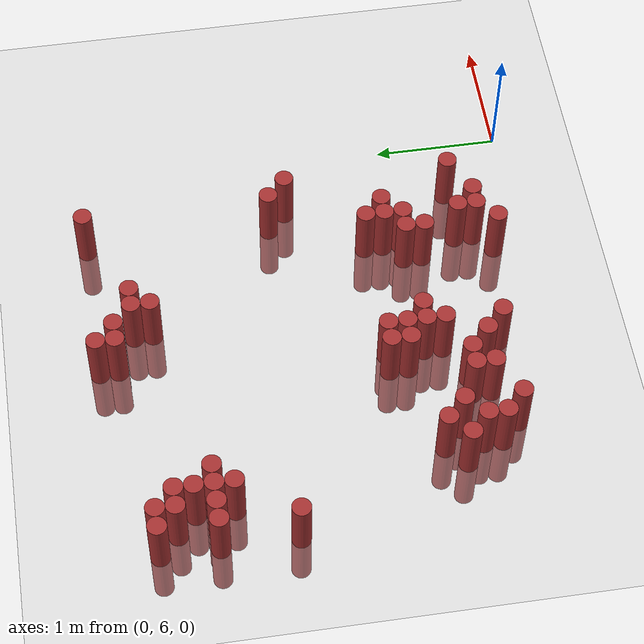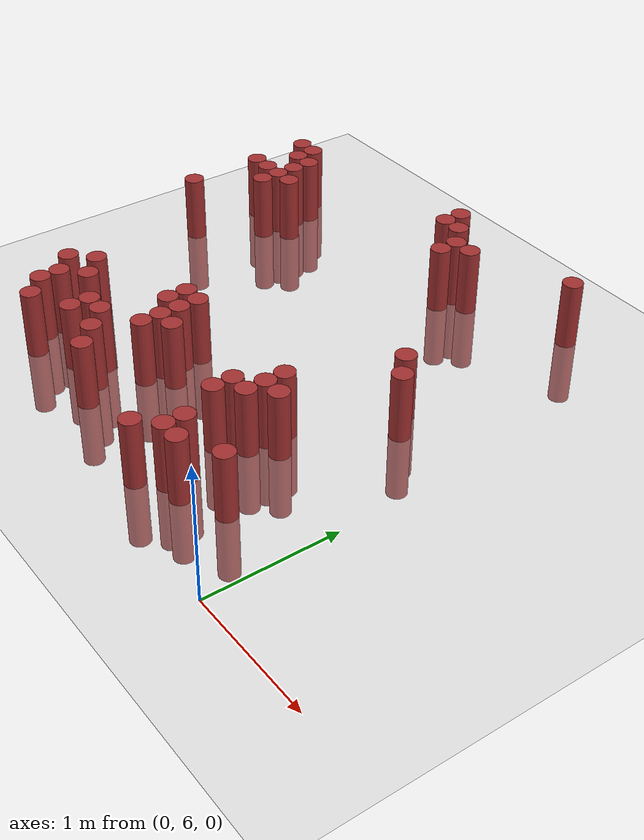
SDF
<sdf version="1.6">
 <world name="default">
  <model name="ground_plane">
   <static>1</static>
   <link name="link">
    <collision name="collision">
     <geometry><plane><normal>0 0 1</normal><size>100 100</size></plane></geometry>
     <surface><friction><ode><mu>100</mu><mu2>50</mu2></ode></friction></surface>
    </collision>
    <visual name="visual">
     <cast_shadows>0</cast_shadows>
     <geometry><plane><normal>0 0 1</normal><size>100 100</size></plane></geometry>
     <material>
      <script><uri>file://media/materials/scripts/gazebo.material</uri><name>Gazebo/Grey</name></script>
     </material>
    </visual>
   </link>
  </model>
  <model name="unit_cylinder_156">
   <static>1</static>
   <pose>-3.525000 8.175000 0.000000 0.000000 0.000000 0.000000</pose>
   <link name="link">
    <inertial>
     <mass>1</mass>
     <inertia><ixx>0.145833</ixx><ixy>0</ixy><ixz>0</ixz><iyy>0.145833</iyy><iyz>0</iyz><izz>0.125</izz></inertia>
    </inertial>
    <collision name="collision">
     <geometry><cylinder><radius>0.075000</radius><length>1</length></cylinder></geometry>
    </collision>
    <visual name="visual">
     <geometry><cylinder><radius>0.075000</radius><length>1</length></cylinder></geometry>
     <material>
      <ambient>0.648000 0.192000 0.192000 1</ambient>
      <diffuse>0.648000 0.192000 0.192000 1</diffuse>
     </material>
     <material>
      <script><name>Gazebo/Grey</name><uri>file://media/materials/scripts/gazebo.material</uri></script>
     </material>
    </visual>
   </link>
  </model>
  <model name="unit_cylinder_157">
   <static>1</static>
   <pose>-3.525000 8.775000 0.000000 0.000000 0.000000 0.000000</pose>
   <link name="link">
    <inertial>
     <mass>1</mass>
     <inertia><ixx>0.145833</ixx><ixy>0</ixy><ixz>0</ixz><iyy>0.145833</iyy><iyz>0</iyz><izz>0.125</izz></inertia>
    </inertial>
    <collision name="collision">
     <geometry><cylinder><radius>0.075000</radius><length>1</length></cylinder></geometry>
    </collision>
    <visual name="visual">
     <geometry><cylinder><radius>0.075000</radius><length>1</length></cylinder></geometry>
     <material>
      <ambient>0.648000 0.192000 0.192000 1</ambient>
      <diffuse>0.648000 0.192000 0.192000 1</diffuse>
     </material>
     <material>
      <script><name>Gazebo/Grey</name><uri>file://media/materials/scripts/gazebo.material</uri></script>
     </material>
    </visual>
   </link>
  </model>
  <model name="unit_cylinder_158">
   <static>1</static>
   <pose>-3.525000 9.225000 0.000000 0.000000 0.000000 0.000000</pose>
   <link name="link">
    <inertial>
     <mass>1</mass>
     <inertia><ixx>0.145833</ixx><ixy>0</ixy><ixz>0</ixz><iyy>0.145833</iyy><iyz>0</iyz><izz>0.125</izz></inertia>
    </inertial>
    <collision name="collision">
     <geometry><cylinder><radius>0.075000</radius><length>1</length></cylinder></geometry>
    </collision>
    <visual name="visual">
     <geometry><cylinder><radius>0.075000</radius><length>1</length></cylinder></geometry>
     <material>
      <ambient>0.648000 0.192000 0.192000 1</ambient>
      <diffuse>0.648000 0.192000 0.192000 1</diffuse>
     </material>
     <material>
      <script><name>Gazebo/Grey</name><uri>file://media/materials/scripts/gazebo.material</uri></script>
     </material>
    </visual>
   </link>
  </model>
  <model name="unit_cylinder_159">
   <static>1</static>
   <pose>-3.375000 8.775000 0.000000 0.000000 0.000000 0.000000</pose>
   <link name="link">
    <inertial>
     <mass>1</mass>
     <inertia><ixx>0.145833</ixx><ixy>0</ixy><ixz>0</ixz><iyy>0.145833</iyy><iyz>0</iyz><izz>0.125</izz></inertia>
    </inertial>
    <collision name="collision">
     <geometry><cylinder><radius>0.075000</radius><length>1</length></cylinder></geometry>
    </collision>
    <visual name="visual">
     <geometry><cylinder><radius>0.075000</radius><length>1</length></cylinder></geometry>
     <material>
      <ambient>0.648000 0.192000 0.192000 1</ambient>
      <diffuse>0.648000 0.192000 0.192000 1</diffuse>
     </material>
     <material>
      <script><name>Gazebo/Grey</name><uri>file://media/materials/scripts/gazebo.material</uri></script>
     </material>
    </visual>
   </link>
  </model>
  <model name="unit_cylinder_160">
   <static>1</static>
   <pose>-3.375000 9.075000 0.000000 0.000000 0.000000 0.000000</pose>
   <link name="link">
    <inertial>
     <mass>1</mass>
     <inertia><ixx>0.145833</ixx><ixy>0</ixy><ixz>0</ixz><iyy>0.145833</iyy><iyz>0</iyz><izz>0.125</izz></inertia>
    </inertial>
    <collision name="collision">
     <geometry><cylinder><radius>0.075000</radius><length>1</length></cylinder></geometry>
    </collision>
    <visual name="visual">
     <geometry><cylinder><radius>0.075000</radius><length>1</length></cylinder></geometry>
     <material>
      <ambient>0.648000 0.192000 0.192000 1</ambient>
      <diffuse>0.648000 0.192000 0.192000 1</diffuse>
     </material>
     <material>
      <script><name>Gazebo/Grey</name><uri>file://media/materials/scripts/gazebo.material</uri></script>
     </material>
    </visual>
   </link>
  </model>
  <model name="unit_cylinder_161">
   <static>1</static>
   <pose>-3.375000 9.225000 0.000000 0.000000 0.000000 0.000000</pose>
   <link name="link">
    <inertial>
     <mass>1</mass>
     <inertia><ixx>0.145833</ixx><ixy>0</ixy><ixz>0</ixz><iyy>0.145833</iyy><iyz>0</iyz><izz>0.125</izz></inertia>
    </inertial>
    <collision name="collision">
     <geometry><cylinder><radius>0.075000</radius><length>1</length></cylinder></geometry>
    </collision>
    <visual name="visual">
     <geometry><cylinder><radius>0.075000</radius><length>1</length></cylinder></geometry>
     <material>
      <ambient>0.648000 0.192000 0.192000 1</ambient>
      <diffuse>0.648000 0.192000 0.192000 1</diffuse>
     </material>
     <material>
      <script><name>Gazebo/Grey</name><uri>file://media/materials/scripts/gazebo.material</uri></script>
     </material>
    </visual>
   </link>
  </model>
  <model name="unit_cylinder_162">
   <static>1</static>
   <pose>-3.225000 8.625000 0.000000 0.000000 0.000000 0.000000</pose>
   <link name="link">
    <inertial>
     <mass>1</mass>
     <inertia><ixx>0.145833</ixx><ixy>0</ixy><ixz>0</ixz><iyy>0.145833</iyy><iyz>0</iyz><izz>0.125</izz></inertia>
    </inertial>
    <collision name="collision">
     <geometry><cylinder><radius>0.075000</radius><length>1</length></cylinder></geometry>
    </collision>
    <visual name="visual">
     <geometry><cylinder><radius>0.075000</radius><length>1</length></cylinder></geometry>
     <material>
      <ambient>0.648000 0.192000 0.192000 1</ambient>
      <diffuse>0.648000 0.192000 0.192000 1</diffuse>
     </material>
     <material>
      <script><name>Gazebo/Grey</name><uri>file://media/materials/scripts/gazebo.material</uri></script>
     </material>
    </visual>
   </link>
  </model>
  <model name="unit_cylinder_163">
   <static>1</static>
   <pose>-3.225000 8.775000 0.000000 0.000000 0.000000 0.000000</pose>
   <link name="link">
    <inertial>
     <mass>1</mass>
     <inertia><ixx>0.145833</ixx><ixy>0</ixy><ixz>0</ixz><iyy>0.145833</iyy><iyz>0</iyz><izz>0.125</izz></inertia>
    </inertial>
    <collision name="collision">
     <geometry><cylinder><radius>0.075000</radius><length>1</length></cylinder></geometry>
    </collision>
    <visual name="visual">
     <geometry><cylinder><radius>0.075000</radius><length>1</length></cylinder></geometry>
     <material>
      <ambient>0.648000 0.192000 0.192000 1</ambient>
      <diffuse>0.648000 0.192000 0.192000 1</diffuse>
     </material>
     <material>
      <script><name>Gazebo/Grey</name><uri>file://media/materials/scripts/gazebo.material</uri></script>
     </material>
    </visual>
   </link>
  </model>
  <model name="unit_cylinder_164">
   <static>1</static>
   <pose>-3.225000 8.925000 0.000000 0.000000 0.000000 0.000000</pose>
   <link name="link">
    <inertial>
     <mass>1</mass>
     <inertia><ixx>0.145833</ixx><ixy>0</ixy><ixz>0</ixz><iyy>0.145833</iyy><iyz>0</iyz><izz>0.125</izz></inertia>
    </inertial>
    <collision name="collision">
     <geometry><cylinder><radius>0.075000</radius><length>1</length></cylinder></geometry>
    </collision>
    <visual name="visual">
     <geometry><cylinder><radius>0.075000</radius><length>1</length></cylinder></geometry>
     <material>
      <ambient>0.648000 0.192000 0.192000 1</ambient>
      <diffuse>0.648000 0.192000 0.192000 1</diffuse>
     </material>
     <material>
      <script><name>Gazebo/Grey</name><uri>file://media/materials/scripts/gazebo.material</uri></script>
     </material>
    </visual>
   </link>
  </model>
  <model name="unit_cylinder_165">
   <static>1</static>
   <pose>-3.225000 9.075000 0.000000 0.000000 0.000000 0.000000</pose>
   <link name="link">
    <inertial>
     <mass>1</mass>
     <inertia><ixx>0.145833</ixx><ixy>0</ixy><ixz>0</ixz><iyy>0.145833</iyy><iyz>0</iyz><izz>0.125</izz></inertia>
    </inertial>
    <collision name="collision">
     <geometry><cylinder><radius>0.075000</radius><length>1</length></cylinder></geometry>
    </collision>
    <visual name="visual">
     <geometry><cylinder><radius>0.075000</radius><length>1</length></cylinder></geometry>
     <material>
      <ambient>0.648000 0.192000 0.192000 1</ambient>
      <diffuse>0.648000 0.192000 0.192000 1</diffuse>
     </material>
     <material>
      <script><name>Gazebo/Grey</name><uri>file://media/materials/scripts/gazebo.material</uri></script>
     </material>
    </visual>
   </link>
  </model>
  <model name="unit_cylinder_166">
   <static>1</static>
   <pose>-3.075000 6.825000 0.000000 0.000000 0.000000 0.000000</pose>
   <link name="link">
    <inertial>
     <mass>1</mass>
     <inertia><ixx>0.145833</ixx><ixy>0</ixy><ixz>0</ixz><iyy>0.145833</iyy><iyz>0</iyz><izz>0.125</izz></inertia>
    </inertial>
    <collision name="collision">
     <geometry><cylinder><radius>0.075000</radius><length>1</length></cylinder></geometry>
    </collision>
    <visual name="visual">
     <geometry><cylinder><radius>0.075000</radius><length>1</length></cylinder></geometry>
     <material>
      <ambient>0.648000 0.192000 0.192000 1</ambient>
      <diffuse>0.648000 0.192000 0.192000 1</diffuse>
     </material>
     <material>
      <script><name>Gazebo/Grey</name><uri>file://media/materials/scripts/gazebo.material</uri></script>
     </material>
    </visual>
   </link>
  </model>
  <model name="unit_cylinder_167">
   <static>1</static>
   <pose>-3.075000 8.775000 0.000000 0.000000 0.000000 0.000000</pose>
   <link name="link">
    <inertial>
     <mass>1</mass>
     <inertia><ixx>0.145833</ixx><ixy>0</ixy><ixz>0</ixz><iyy>0.145833</iyy><iyz>0</iyz><izz>0.125</izz></inertia>
    </inertial>
    <collision name="collision">
     <geometry><cylinder><radius>0.075000</radius><length>1</length></cylinder></geometry>
    </collision>
    <visual name="visual">
     <geometry><cylinder><radius>0.075000</radius><length>1</length></cylinder></geometry>
     <material>
      <ambient>0.648000 0.192000 0.192000 1</ambient>
      <diffuse>0.648000 0.192000 0.192000 1</diffuse>
     </material>
     <material>
      <script><name>Gazebo/Grey</name><uri>file://media/materials/scripts/gazebo.material</uri></script>
     </material>
    </visual>
   </link>
  </model>
  <model name="unit_cylinder_169">
   <static>1</static>
   <pose>-2.925000 6.525000 0.000000 0.000000 0.000000 0.000000</pose>
   <link name="link">
    <inertial>
     <mass>1</mass>
     <inertia><ixx>0.145833</ixx><ixy>0</ixy><ixz>0</ixz><iyy>0.145833</iyy><iyz>0</iyz><izz>0.125</izz></inertia>
    </inertial>
    <collision name="collision">
     <geometry><cylinder><radius>0.075000</radius><length>1</length></cylinder></geometry>
    </collision>
    <visual name="visual">
     <geometry><cylinder><radius>0.075000</radius><length>1</length></cylinder></geometry>
     <material>
      <ambient>0.648000 0.192000 0.192000 1</ambient>
      <diffuse>0.648000 0.192000 0.192000 1</diffuse>
     </material>
     <material>
      <script><name>Gazebo/Grey</name><uri>file://media/materials/scripts/gazebo.material</uri></script>
     </material>
    </visual>
   </link>
  </model>
  <model name="unit_cylinder_170">
   <static>1</static>
   <pose>-2.925000 6.675000 0.000000 0.000000 0.000000 0.000000</pose>
   <link name="link">
    <inertial>
     <mass>1</mass>
     <inertia><ixx>0.145833</ixx><ixy>0</ixy><ixz>0</ixz><iyy>0.145833</iyy><iyz>0</iyz><izz>0.125</izz></inertia>
    </inertial>
    <collision name="collision">
     <geometry><cylinder><radius>0.075000</radius><length>1</length></cylinder></geometry>
    </collision>
    <visual name="visual">
     <geometry><cylinder><radius>0.075000</radius><length>1</length></cylinder></geometry>
     <material>
      <ambient>0.648000 0.192000 0.192000 1</ambient>
      <diffuse>0.648000 0.192000 0.192000 1</diffuse>
     </material>
     <material>
      <script><name>Gazebo/Grey</name><uri>file://media/materials/scripts/gazebo.material</uri></script>
     </material>
    </visual>
   </link>
  </model>
  <model name="unit_cylinder_171">
   <static>1</static>
   <pose>-2.925000 6.975000 0.000000 0.000000 0.000000 0.000000</pose>
   <link name="link">
    <inertial>
     <mass>1</mass>
     <inertia><ixx>0.145833</ixx><ixy>0</ixy><ixz>0</ixz><iyy>0.145833</iyy><iyz>0</iyz><izz>0.125</izz></inertia>
    </inertial>
    <collision name="collision">
     <geometry><cylinder><radius>0.075000</radius><length>1</length></cylinder></geometry>
    </collision>
    <visual name="visual">
     <geometry><cylinder><radius>0.075000</radius><length>1</length></cylinder></geometry>
     <material>
      <ambient>0.648000 0.192000 0.192000 1</ambient>
      <diffuse>0.648000 0.192000 0.192000 1</diffuse>
     </material>
     <material>
      <script><name>Gazebo/Grey</name><uri>file://media/materials/scripts/gazebo.material</uri></script>
     </material>
    </visual>
   </link>
  </model>
  <model name="unit_cylinder_175">
   <static>1</static>
   <pose>-2.775000 6.375000 0.000000 0.000000 0.000000 0.000000</pose>
   <link name="link">
    <inertial>
     <mass>1</mass>
     <inertia><ixx>0.145833</ixx><ixy>0</ixy><ixz>0</ixz><iyy>0.145833</iyy><iyz>0</iyz><izz>0.125</izz></inertia>
    </inertial>
    <collision name="collision">
     <geometry><cylinder><radius>0.075000</radius><length>1</length></cylinder></geometry>
    </collision>
    <visual name="visual">
     <geometry><cylinder><radius>0.075000</radius><length>1</length></cylinder></geometry>
     <material>
      <ambient>0.648000 0.192000 0.192000 1</ambient>
      <diffuse>0.648000 0.192000 0.192000 1</diffuse>
     </material>
     <material>
      <script><name>Gazebo/Grey</name><uri>file://media/materials/scripts/gazebo.material</uri></script>
     </material>
    </visual>
   </link>
  </model>
  <model name="unit_cylinder_176">
   <static>1</static>
   <pose>-2.775000 6.825000 0.000000 0.000000 0.000000 0.000000</pose>
   <link name="link">
    <inertial>
     <mass>1</mass>
     <inertia><ixx>0.145833</ixx><ixy>0</ixy><ixz>0</ixz><iyy>0.145833</iyy><iyz>0</iyz><izz>0.125</izz></inertia>
    </inertial>
    <collision name="collision">
     <geometry><cylinder><radius>0.075000</radius><length>1</length></cylinder></geometry>
    </collision>
    <visual name="visual">
     <geometry><cylinder><radius>0.075000</radius><length>1</length></cylinder></geometry>
     <material>
      <ambient>0.648000 0.192000 0.192000 1</ambient>
      <diffuse>0.648000 0.192000 0.192000 1</diffuse>
     </material>
     <material>
      <script><name>Gazebo/Grey</name><uri>file://media/materials/scripts/gazebo.material</uri></script>
     </material>
    </visual>
   </link>
  </model>
  <model name="unit_cylinder_179">
   <static>1</static>
   <pose>-2.475000 6.525000 0.000000 0.000000 0.000000 0.000000</pose>
   <link name="link">
    <inertial>
     <mass>1</mass>
     <inertia><ixx>0.145833</ixx><ixy>0</ixy><ixz>0</ixz><iyy>0.145833</iyy><iyz>0</iyz><izz>0.125</izz></inertia>
    </inertial>
    <collision name="collision">
     <geometry><cylinder><radius>0.075000</radius><length>1</length></cylinder></geometry>
    </collision>
    <visual name="visual">
     <geometry><cylinder><radius>0.075000</radius><length>1</length></cylinder></geometry>
     <material>
      <ambient>0.648000 0.192000 0.192000 1</ambient>
      <diffuse>0.648000 0.192000 0.192000 1</diffuse>
     </material>
     <material>
      <script><name>Gazebo/Grey</name><uri>file://media/materials/scripts/gazebo.material</uri></script>
     </material>
    </visual>
   </link>
  </model>
  <model name="unit_cylinder_180">
   <static>1</static>
   <pose>-2.475000 6.675000 0.000000 0.000000 0.000000 0.000000</pose>
   <link name="link">
    <inertial>
     <mass>1</mass>
     <inertia><ixx>0.145833</ixx><ixy>0</ixy><ixz>0</ixz><iyy>0.145833</iyy><iyz>0</iyz><izz>0.125</izz></inertia>
    </inertial>
    <collision name="collision">
     <geometry><cylinder><radius>0.075000</radius><length>1</length></cylinder></geometry>
    </collision>
    <visual name="visual">
     <geometry><cylinder><radius>0.075000</radius><length>1</length></cylinder></geometry>
     <material>
      <ambient>0.648000 0.192000 0.192000 1</ambient>
      <diffuse>0.648000 0.192000 0.192000 1</diffuse>
     </material>
     <material>
      <script><name>Gazebo/Grey</name><uri>file://media/materials/scripts/gazebo.material</uri></script>
     </material>
    </visual>
   </link>
  </model>
  <model name="unit_cylinder_182">
   <static>1</static>
   <pose>-2.325000 6.675000 0.000000 0.000000 0.000000 0.000000</pose>
   <link name="link">
    <inertial>
     <mass>1</mass>
     <inertia><ixx>0.145833</ixx><ixy>0</ixy><ixz>0</ixz><iyy>0.145833</iyy><iyz>0</iyz><izz>0.125</izz></inertia>
    </inertial>
    <collision name="collision">
     <geometry><cylinder><radius>0.075000</radius><length>1</length></cylinder></geometry>
    </collision>
    <visual name="visual">
     <geometry><cylinder><radius>0.075000</radius><length>1</length></cylinder></geometry>
     <material>
      <ambient>0.648000 0.192000 0.192000 1</ambient>
      <diffuse>0.648000 0.192000 0.192000 1</diffuse>
     </material>
     <material>
      <script><name>Gazebo/Grey</name><uri>file://media/materials/scripts/gazebo.material</uri></script>
     </material>
    </visual>
   </link>
  </model>
  <model name="unit_cylinder_185">
   <static>1</static>
   <pose>-2.175000 6.525000 0.000000 0.000000 0.000000 0.000000</pose>
   <link name="link">
    <inertial>
     <mass>1</mass>
     <inertia><ixx>0.145833</ixx><ixy>0</ixy><ixz>0</ixz><iyy>0.145833</iyy><iyz>0</iyz><izz>0.125</izz></inertia>
    </inertial>
    <collision name="collision">
     <geometry><cylinder><radius>0.075000</radius><length>1</length></cylinder></geometry>
    </collision>
    <visual name="visual">
     <geometry><cylinder><radius>0.075000</radius><length>1</length></cylinder></geometry>
     <material>
      <ambient>0.648000 0.192000 0.192000 1</ambient>
      <diffuse>0.648000 0.192000 0.192000 1</diffuse>
     </material>
     <material>
      <script><name>Gazebo/Grey</name><uri>file://media/materials/scripts/gazebo.material</uri></script>
     </material>
    </visual>
   </link>
  </model>
  <model name="unit_cylinder_186">
   <static>1</static>
   <pose>-2.175000 7.125000 0.000000 0.000000 0.000000 0.000000</pose>
   <link name="link">
    <inertial>
     <mass>1</mass>
     <inertia><ixx>0.145833</ixx><ixy>0</ixy><ixz>0</ixz><iyy>0.145833</iyy><iyz>0</iyz><izz>0.125</izz></inertia>
    </inertial>
    <collision name="collision">
     <geometry><cylinder><radius>0.075000</radius><length>1</length></cylinder></geometry>
    </collision>
    <visual name="visual">
     <geometry><cylinder><radius>0.075000</radius><length>1</length></cylinder></geometry>
     <material>
      <ambient>0.648000 0.192000 0.192000 1</ambient>
      <diffuse>0.648000 0.192000 0.192000 1</diffuse>
     </material>
     <material>
      <script><name>Gazebo/Grey</name><uri>file://media/materials/scripts/gazebo.material</uri></script>
     </material>
    </visual>
   </link>
  </model>
  <model name="unit_cylinder_187">
   <static>1</static>
   <pose>-2.175000 7.275000 0.000000 0.000000 0.000000 0.000000</pose>
   <link name="link">
    <inertial>
     <mass>1</mass>
     <inertia><ixx>0.145833</ixx><ixy>0</ixy><ixz>0</ixz><iyy>0.145833</iyy><iyz>0</iyz><izz>0.125</izz></inertia>
    </inertial>
    <collision name="collision">
     <geometry><cylinder><radius>0.075000</radius><length>1</length></cylinder></geometry>
    </collision>
    <visual name="visual">
     <geometry><cylinder><radius>0.075000</radius><length>1</length></cylinder></geometry>
     <material>
      <ambient>0.648000 0.192000 0.192000 1</ambient>
      <diffuse>0.648000 0.192000 0.192000 1</diffuse>
     </material>
     <material>
      <script><name>Gazebo/Grey</name><uri>file://media/materials/scripts/gazebo.material</uri></script>
     </material>
    </visual>
   </link>
  </model>
  <model name="unit_cylinder_191">
   <static>1</static>
   <pose>-2.025000 6.375000 0.000000 0.000000 0.000000 0.000000</pose>
   <link name="link">
    <inertial>
     <mass>1</mass>
     <inertia><ixx>0.145833</ixx><ixy>0</ixy><ixz>0</ixz><iyy>0.145833</iyy><iyz>0</iyz><izz>0.125</izz></inertia>
    </inertial>
    <collision name="collision">
     <geometry><cylinder><radius>0.075000</radius><length>1</length></cylinder></geometry>
    </collision>
    <visual name="visual">
     <geometry><cylinder><radius>0.075000</radius><length>1</length></cylinder></geometry>
     <material>
      <ambient>0.648000 0.192000 0.192000 1</ambient>
      <diffuse>0.648000 0.192000 0.192000 1</diffuse>
     </material>
     <material>
      <script><name>Gazebo/Grey</name><uri>file://media/materials/scripts/gazebo.material</uri></script>
     </material>
    </visual>
   </link>
  </model>
  <model name="unit_cylinder_192">
   <static>1</static>
   <pose>-2.025000 6.825000 0.000000 0.000000 0.000000 0.000000</pose>
   <link name="link">
    <inertial>
     <mass>1</mass>
     <inertia><ixx>0.145833</ixx><ixy>0</ixy><ixz>0</ixz><iyy>0.145833</iyy><iyz>0</iyz><izz>0.125</izz></inertia>
    </inertial>
    <collision name="collision">
     <geometry><cylinder><radius>0.075000</radius><length>1</length></cylinder></geometry>
    </collision>
    <visual name="visual">
     <geometry><cylinder><radius>0.075000</radius><length>1</length></cylinder></geometry>
     <material>
      <ambient>0.648000 0.192000 0.192000 1</ambient>
      <diffuse>0.648000 0.192000 0.192000 1</diffuse>
     </material>
     <material>
      <script><name>Gazebo/Grey</name><uri>file://media/materials/scripts/gazebo.material</uri></script>
     </material>
    </visual>
   </link>
  </model>
  <model name="unit_cylinder_193">
   <static>1</static>
   <pose>-2.025000 6.975000 0.000000 0.000000 0.000000 0.000000</pose>
   <link name="link">
    <inertial>
     <mass>1</mass>
     <inertia><ixx>0.145833</ixx><ixy>0</ixy><ixz>0</ixz><iyy>0.145833</iyy><iyz>0</iyz><izz>0.125</izz></inertia>
    </inertial>
    <collision name="collision">
     <geometry><cylinder><radius>0.075000</radius><length>1</length></cylinder></geometry>
    </collision>
    <visual name="visual">
     <geometry><cylinder><radius>0.075000</radius><length>1</length></cylinder></geometry>
     <material>
      <ambient>0.648000 0.192000 0.192000 1</ambient>
      <diffuse>0.648000 0.192000 0.192000 1</diffuse>
     </material>
     <material>
      <script><name>Gazebo/Grey</name><uri>file://media/materials/scripts/gazebo.material</uri></script>
     </material>
    </visual>
   </link>
  </model>
  <model name="unit_cylinder_194">
   <static>1</static>
   <pose>-2.025000 7.125000 0.000000 0.000000 0.000000 0.000000</pose>
   <link name="link">
    <inertial>
     <mass>1</mass>
     <inertia><ixx>0.145833</ixx><ixy>0</ixy><ixz>0</ixz><iyy>0.145833</iyy><iyz>0</iyz><izz>0.125</izz></inertia>
    </inertial>
    <collision name="collision">
     <geometry><cylinder><radius>0.075000</radius><length>1</length></cylinder></geometry>
    </collision>
    <visual name="visual">
     <geometry><cylinder><radius>0.075000</radius><length>1</length></cylinder></geometry>
     <material>
      <ambient>0.648000 0.192000 0.192000 1</ambient>
      <diffuse>0.648000 0.192000 0.192000 1</diffuse>
     </material>
     <material>
      <script><name>Gazebo/Grey</name><uri>file://media/materials/scripts/gazebo.material</uri></script>
     </material>
    </visual>
   </link>
  </model>
  <model name="unit_cylinder_195">
   <static>1</static>
   <pose>-2.025000 7.275000 0.000000 0.000000 0.000000 0.000000</pose>
   <link name="link">
    <inertial>
     <mass>1</mass>
     <inertia><ixx>0.145833</ixx><ixy>0</ixy><ixz>0</ixz><iyy>0.145833</iyy><iyz>0</iyz><izz>0.125</izz></inertia>
    </inertial>
    <collision name="collision">
     <geometry><cylinder><radius>0.075000</radius><length>1</length></cylinder></geometry>
    </collision>
    <visual name="visual">
     <geometry><cylinder><radius>0.075000</radius><length>1</length></cylinder></geometry>
     <material>
      <ambient>0.648000 0.192000 0.192000 1</ambient>
      <diffuse>0.648000 0.192000 0.192000 1</diffuse>
     </material>
     <material>
      <script><name>Gazebo/Grey</name><uri>file://media/materials/scripts/gazebo.material</uri></script>
     </material>
    </visual>
   </link>
  </model>
  <model name="unit_cylinder_199">
   <static>1</static>
   <pose>-1.875000 6.975000 0.000000 0.000000 0.000000 0.000000</pose>
   <link name="link">
    <inertial>
     <mass>1</mass>
     <inertia><ixx>0.145833</ixx><ixy>0</ixy><ixz>0</ixz><iyy>0.145833</iyy><iyz>0</iyz><izz>0.125</izz></inertia>
    </inertial>
    <collision name="collision">
     <geometry><cylinder><radius>0.075000</radius><length>1</length></cylinder></geometry>
    </collision>
    <visual name="visual">
     <geometry><cylinder><radius>0.075000</radius><length>1</length></cylinder></geometry>
     <material>
      <ambient>0.648000 0.192000 0.192000 1</ambient>
      <diffuse>0.648000 0.192000 0.192000 1</diffuse>
     </material>
     <material>
      <script><name>Gazebo/Grey</name><uri>file://media/materials/scripts/gazebo.material</uri></script>
     </material>
    </visual>
   </link>
  </model>
  <model name="unit_cylinder_200">
   <static>1</static>
   <pose>-1.875000 9.375000 0.000000 0.000000 0.000000 0.000000</pose>
   <link name="link">
    <inertial>
     <mass>1</mass>
     <inertia><ixx>0.145833</ixx><ixy>0</ixy><ixz>0</ixz><iyy>0.145833</iyy><iyz>0</iyz><izz>0.125</izz></inertia>
    </inertial>
    <collision name="collision">
     <geometry><cylinder><radius>0.075000</radius><length>1</length></cylinder></geometry>
    </collision>
    <visual name="visual">
     <geometry><cylinder><radius>0.075000</radius><length>1</length></cylinder></geometry>
     <material>
      <ambient>0.648000 0.192000 0.192000 1</ambient>
      <diffuse>0.648000 0.192000 0.192000 1</diffuse>
     </material>
     <material>
      <script><name>Gazebo/Grey</name><uri>file://media/materials/scripts/gazebo.material</uri></script>
     </material>
    </visual>
   </link>
  </model>
  <model name="unit_cylinder_201">
   <static>1</static>
   <pose>-1.875000 9.525000 0.000000 0.000000 0.000000 0.000000</pose>
   <link name="link">
    <inertial>
     <mass>1</mass>
     <inertia><ixx>0.145833</ixx><ixy>0</ixy><ixz>0</ixz><iyy>0.145833</iyy><iyz>0</iyz><izz>0.125</izz></inertia>
    </inertial>
    <collision name="collision">
     <geometry><cylinder><radius>0.075000</radius><length>1</length></cylinder></geometry>
    </collision>
    <visual name="visual">
     <geometry><cylinder><radius>0.075000</radius><length>1</length></cylinder></geometry>
     <material>
      <ambient>0.648000 0.192000 0.192000 1</ambient>
      <diffuse>0.648000 0.192000 0.192000 1</diffuse>
     </material>
     <material>
      <script><name>Gazebo/Grey</name><uri>file://media/materials/scripts/gazebo.material</uri></script>
     </material>
    </visual>
   </link>
  </model>
  <model name="unit_cylinder_204">
   <static>1</static>
   <pose>-1.725000 9.375000 0.000000 0.000000 0.000000 0.000000</pose>
   <link name="link">
    <inertial>
     <mass>1</mass>
     <inertia><ixx>0.145833</ixx><ixy>0</ixy><ixz>0</ixz><iyy>0.145833</iyy><iyz>0</iyz><izz>0.125</izz></inertia>
    </inertial>
    <collision name="collision">
     <geometry><cylinder><radius>0.075000</radius><length>1</length></cylinder></geometry>
    </collision>
    <visual name="visual">
     <geometry><cylinder><radius>0.075000</radius><length>1</length></cylinder></geometry>
     <material>
      <ambient>0.648000 0.192000 0.192000 1</ambient>
      <diffuse>0.648000 0.192000 0.192000 1</diffuse>
     </material>
     <material>
      <script><name>Gazebo/Grey</name><uri>file://media/materials/scripts/gazebo.material</uri></script>
     </material>
    </visual>
   </link>
  </model>
  <model name="unit_cylinder_207">
   <static>1</static>
   <pose>-1.575000 9.075000 0.000000 0.000000 0.000000 0.000000</pose>
   <link name="link">
    <inertial>
     <mass>1</mass>
     <inertia><ixx>0.145833</ixx><ixy>0</ixy><ixz>0</ixz><iyy>0.145833</iyy><iyz>0</iyz><izz>0.125</izz></inertia>
    </inertial>
    <collision name="collision">
     <geometry><cylinder><radius>0.075000</radius><length>1</length></cylinder></geometry>
    </collision>
    <visual name="visual">
     <geometry><cylinder><radius>0.075000</radius><length>1</length></cylinder></geometry>
     <material>
      <ambient>0.648000 0.192000 0.192000 1</ambient>
      <diffuse>0.648000 0.192000 0.192000 1</diffuse>
     </material>
     <material>
      <script><name>Gazebo/Grey</name><uri>file://media/materials/scripts/gazebo.material</uri></script>
     </material>
    </visual>
   </link>
  </model>
  <model name="unit_cylinder_208">
   <static>1</static>
   <pose>-1.575000 9.225000 0.000000 0.000000 0.000000 0.000000</pose>
   <link name="link">
    <inertial>
     <mass>1</mass>
     <inertia><ixx>0.145833</ixx><ixy>0</ixy><ixz>0</ixz><iyy>0.145833</iyy><iyz>0</iyz><izz>0.125</izz></inertia>
    </inertial>
    <collision name="collision">
     <geometry><cylinder><radius>0.075000</radius><length>1</length></cylinder></geometry>
    </collision>
    <visual name="visual">
     <geometry><cylinder><radius>0.075000</radius><length>1</length></cylinder></geometry>
     <material>
      <ambient>0.648000 0.192000 0.192000 1</ambient>
      <diffuse>0.648000 0.192000 0.192000 1</diffuse>
     </material>
     <material>
      <script><name>Gazebo/Grey</name><uri>file://media/materials/scripts/gazebo.material</uri></script>
     </material>
    </visual>
   </link>
  </model>
  <model name="unit_cylinder_212">
   <static>1</static>
   <pose>-1.425000 9.225000 0.000000 0.000000 0.000000 0.000000</pose>
   <link name="link">
    <inertial>
     <mass>1</mass>
     <inertia><ixx>0.145833</ixx><ixy>0</ixy><ixz>0</ixz><iyy>0.145833</iyy><iyz>0</iyz><izz>0.125</izz></inertia>
    </inertial>
    <collision name="collision">
     <geometry><cylinder><radius>0.075000</radius><length>1</length></cylinder></geometry>
    </collision>
    <visual name="visual">
     <geometry><cylinder><radius>0.075000</radius><length>1</length></cylinder></geometry>
     <material>
      <ambient>0.648000 0.192000 0.192000 1</ambient>
      <diffuse>0.648000 0.192000 0.192000 1</diffuse>
     </material>
     <material>
      <script><name>Gazebo/Grey</name><uri>file://media/materials/scripts/gazebo.material</uri></script>
     </material>
    </visual>
   </link>
  </model>
  <model name="unit_cylinder_215">
   <static>1</static>
   <pose>-1.125000 6.225000 0.000000 0.000000 0.000000 0.000000</pose>
   <link name="link">
    <inertial>
     <mass>1</mass>
     <inertia><ixx>0.145833</ixx><ixy>0</ixy><ixz>0</ixz><iyy>0.145833</iyy><iyz>0</iyz><izz>0.125</izz></inertia>
    </inertial>
    <collision name="collision">
     <geometry><cylinder><radius>0.075000</radius><length>1</length></cylinder></geometry>
    </collision>
    <visual name="visual">
     <geometry><cylinder><radius>0.075000</radius><length>1</length></cylinder></geometry>
     <material>
      <ambient>0.648000 0.192000 0.192000 1</ambient>
      <diffuse>0.648000 0.192000 0.192000 1</diffuse>
     </material>
     <material>
      <script><name>Gazebo/Grey</name><uri>file://media/materials/scripts/gazebo.material</uri></script>
     </material>
    </visual>
   </link>
  </model>
  <model name="unit_cylinder_216">
   <static>1</static>
   <pose>-1.125000 6.825000 0.000000 0.000000 0.000000 0.000000</pose>
   <link name="link">
    <inertial>
     <mass>1</mass>
     <inertia><ixx>0.145833</ixx><ixy>0</ixy><ixz>0</ixz><iyy>0.145833</iyy><iyz>0</iyz><izz>0.125</izz></inertia>
    </inertial>
    <collision name="collision">
     <geometry><cylinder><radius>0.075000</radius><length>1</length></cylinder></geometry>
    </collision>
    <visual name="visual">
     <geometry><cylinder><radius>0.075000</radius><length>1</length></cylinder></geometry>
     <material>
      <ambient>0.648000 0.192000 0.192000 1</ambient>
      <diffuse>0.648000 0.192000 0.192000 1</diffuse>
     </material>
     <material>
      <script><name>Gazebo/Grey</name><uri>file://media/materials/scripts/gazebo.material</uri></script>
     </material>
    </visual>
   </link>
  </model>
  <model name="unit_cylinder_217">
   <static>1</static>
   <pose>-1.125000 6.975000 0.000000 0.000000 0.000000 0.000000</pose>
   <link name="link">
    <inertial>
     <mass>1</mass>
     <inertia><ixx>0.145833</ixx><ixy>0</ixy><ixz>0</ixz><iyy>0.145833</iyy><iyz>0</iyz><izz>0.125</izz></inertia>
    </inertial>
    <collision name="collision">
     <geometry><cylinder><radius>0.075000</radius><length>1</length></cylinder></geometry>
    </collision>
    <visual name="visual">
     <geometry><cylinder><radius>0.075000</radius><length>1</length></cylinder></geometry>
     <material>
      <ambient>0.648000 0.192000 0.192000 1</ambient>
      <diffuse>0.648000 0.192000 0.192000 1</diffuse>
     </material>
     <material>
      <script><name>Gazebo/Grey</name><uri>file://media/materials/scripts/gazebo.material</uri></script>
     </material>
    </visual>
   </link>
  </model>
  <model name="unit_cylinder_219">
   <static>1</static>
   <pose>-0.975000 6.375000 0.000000 0.000000 0.000000 0.000000</pose>
   <link name="link">
    <inertial>
     <mass>1</mass>
     <inertia><ixx>0.145833</ixx><ixy>0</ixy><ixz>0</ixz><iyy>0.145833</iyy><iyz>0</iyz><izz>0.125</izz></inertia>
    </inertial>
    <collision name="collision">
     <geometry><cylinder><radius>0.075000</radius><length>1</length></cylinder></geometry>
    </collision>
    <visual name="visual">
     <geometry><cylinder><radius>0.075000</radius><length>1</length></cylinder></geometry>
     <material>
      <ambient>0.648000 0.192000 0.192000 1</ambient>
      <diffuse>0.648000 0.192000 0.192000 1</diffuse>
     </material>
     <material>
      <script><name>Gazebo/Grey</name><uri>file://media/materials/scripts/gazebo.material</uri></script>
     </material>
    </visual>
   </link>
  </model>
  <model name="unit_cylinder_220">
   <static>1</static>
   <pose>-0.975000 6.525000 0.000000 0.000000 0.000000 0.000000</pose>
   <link name="link">
    <inertial>
     <mass>1</mass>
     <inertia><ixx>0.145833</ixx><ixy>0</ixy><ixz>0</ixz><iyy>0.145833</iyy><iyz>0</iyz><izz>0.125</izz></inertia>
    </inertial>
    <collision name="collision">
     <geometry><cylinder><radius>0.075000</radius><length>1</length></cylinder></geometry>
    </collision>
    <visual name="visual">
     <geometry><cylinder><radius>0.075000</radius><length>1</length></cylinder></geometry>
     <material>
      <ambient>0.648000 0.192000 0.192000 1</ambient>
      <diffuse>0.648000 0.192000 0.192000 1</diffuse>
     </material>
     <material>
      <script><name>Gazebo/Grey</name><uri>file://media/materials/scripts/gazebo.material</uri></script>
     </material>
    </visual>
   </link>
  </model>
  <model name="unit_cylinder_221">
   <static>1</static>
   <pose>-0.975000 6.975000 0.000000 0.000000 0.000000 0.000000</pose>
   <link name="link">
    <inertial>
     <mass>1</mass>
     <inertia><ixx>0.145833</ixx><ixy>0</ixy><ixz>0</ixz><iyy>0.145833</iyy><iyz>0</iyz><izz>0.125</izz></inertia>
    </inertial>
    <collision name="collision">
     <geometry><cylinder><radius>0.075000</radius><length>1</length></cylinder></geometry>
    </collision>
    <visual name="visual">
     <geometry><cylinder><radius>0.075000</radius><length>1</length></cylinder></geometry>
     <material>
      <ambient>0.648000 0.192000 0.192000 1</ambient>
      <diffuse>0.648000 0.192000 0.192000 1</diffuse>
     </material>
     <material>
      <script><name>Gazebo/Grey</name><uri>file://media/materials/scripts/gazebo.material</uri></script>
     </material>
    </visual>
   </link>
  </model>
  <model name="unit_cylinder_222">
   <static>1</static>
   <pose>-0.975000 7.125000 0.000000 0.000000 0.000000 0.000000</pose>
   <link name="link">
    <inertial>
     <mass>1</mass>
     <inertia><ixx>0.145833</ixx><ixy>0</ixy><ixz>0</ixz><iyy>0.145833</iyy><iyz>0</iyz><izz>0.125</izz></inertia>
    </inertial>
    <collision name="collision">
     <geometry><cylinder><radius>0.075000</radius><length>1</length></cylinder></geometry>
    </collision>
    <visual name="visual">
     <geometry><cylinder><radius>0.075000</radius><length>1</length></cylinder></geometry>
     <material>
      <ambient>0.648000 0.192000 0.192000 1</ambient>
      <diffuse>0.648000 0.192000 0.192000 1</diffuse>
     </material>
     <material>
      <script><name>Gazebo/Grey</name><uri>file://media/materials/scripts/gazebo.material</uri></script>
     </material>
    </visual>
   </link>
  </model>
  <model name="unit_cylinder_223">
   <static>1</static>
   <pose>-0.975000 7.275000 0.000000 0.000000 0.000000 0.000000</pose>
   <link name="link">
    <inertial>
     <mass>1</mass>
     <inertia><ixx>0.145833</ixx><ixy>0</ixy><ixz>0</ixz><iyy>0.145833</iyy><iyz>0</iyz><izz>0.125</izz></inertia>
    </inertial>
    <collision name="collision">
     <geometry><cylinder><radius>0.075000</radius><length>1</length></cylinder></geometry>
    </collision>
    <visual name="visual">
     <geometry><cylinder><radius>0.075000</radius><length>1</length></cylinder></geometry>
     <material>
      <ambient>0.648000 0.192000 0.192000 1</ambient>
      <diffuse>0.648000 0.192000 0.192000 1</diffuse>
     </material>
     <material>
      <script><name>Gazebo/Grey</name><uri>file://media/materials/scripts/gazebo.material</uri></script>
     </material>
    </visual>
   </link>
  </model>
  <model name="unit_cylinder_225">
   <static>1</static>
   <pose>-0.825000 6.375000 0.000000 0.000000 0.000000 0.000000</pose>
   <link name="link">
    <inertial>
     <mass>1</mass>
     <inertia><ixx>0.145833</ixx><ixy>0</ixy><ixz>0</ixz><iyy>0.145833</iyy><iyz>0</iyz><izz>0.125</izz></inertia>
    </inertial>
    <collision name="collision">
     <geometry><cylinder><radius>0.075000</radius><length>1</length></cylinder></geometry>
    </collision>
    <visual name="visual">
     <geometry><cylinder><radius>0.075000</radius><length>1</length></cylinder></geometry>
     <material>
      <ambient>0.648000 0.192000 0.192000 1</ambient>
      <diffuse>0.648000 0.192000 0.192000 1</diffuse>
     </material>
     <material>
      <script><name>Gazebo/Grey</name><uri>file://media/materials/scripts/gazebo.material</uri></script>
     </material>
    </visual>
   </link>
  </model>
  <model name="unit_cylinder_226">
   <static>1</static>
   <pose>-0.825000 7.125000 0.000000 0.000000 0.000000 0.000000</pose>
   <link name="link">
    <inertial>
     <mass>1</mass>
     <inertia><ixx>0.145833</ixx><ixy>0</ixy><ixz>0</ixz><iyy>0.145833</iyy><iyz>0</iyz><izz>0.125</izz></inertia>
    </inertial>
    <collision name="collision">
     <geometry><cylinder><radius>0.075000</radius><length>1</length></cylinder></geometry>
    </collision>
    <visual name="visual">
     <geometry><cylinder><radius>0.075000</radius><length>1</length></cylinder></geometry>
     <material>
      <ambient>0.648000 0.192000 0.192000 1</ambient>
      <diffuse>0.648000 0.192000 0.192000 1</diffuse>
     </material>
     <material>
      <script><name>Gazebo/Grey</name><uri>file://media/materials/scripts/gazebo.material</uri></script>
     </material>
    </visual>
   </link>
  </model>
  <model name="unit_cylinder_229">
   <static>1</static>
   <pose>-0.675000 8.025000 0.000000 0.000000 0.000000 0.000000</pose>
   <link name="link">
    <inertial>
     <mass>1</mass>
     <inertia><ixx>0.145833</ixx><ixy>0</ixy><ixz>0</ixz><iyy>0.145833</iyy><iyz>0</iyz><izz>0.125</izz></inertia>
    </inertial>
    <collision name="collision">
     <geometry><cylinder><radius>0.075000</radius><length>1</length></cylinder></geometry>
    </collision>
    <visual name="visual">
     <geometry><cylinder><radius>0.075000</radius><length>1</length></cylinder></geometry>
     <material>
      <ambient>0.648000 0.192000 0.192000 1</ambient>
      <diffuse>0.648000 0.192000 0.192000 1</diffuse>
     </material>
     <material>
      <script><name>Gazebo/Grey</name><uri>file://media/materials/scripts/gazebo.material</uri></script>
     </material>
    </visual>
   </link>
  </model>
  <model name="unit_cylinder_230">
   <static>1</static>
   <pose>-0.675000 9.525000 0.000000 0.000000 0.000000 0.000000</pose>
   <link name="link">
    <inertial>
     <mass>1</mass>
     <inertia><ixx>0.145833</ixx><ixy>0</ixy><ixz>0</ixz><iyy>0.145833</iyy><iyz>0</iyz><izz>0.125</izz></inertia>
    </inertial>
    <collision name="collision">
     <geometry><cylinder><radius>0.075000</radius><length>1</length></cylinder></geometry>
    </collision>
    <visual name="visual">
     <geometry><cylinder><radius>0.075000</radius><length>1</length></cylinder></geometry>
     <material>
      <ambient>0.648000 0.192000 0.192000 1</ambient>
      <diffuse>0.648000 0.192000 0.192000 1</diffuse>
     </material>
     <material>
      <script><name>Gazebo/Grey</name><uri>file://media/materials/scripts/gazebo.material</uri></script>
     </material>
    </visual>
   </link>
  </model>
  <model name="unit_cylinder_234">
   <static>1</static>
   <pose>-0.525000 6.525000 0.000000 0.000000 0.000000 0.000000</pose>
   <link name="link">
    <inertial>
     <mass>1</mass>
     <inertia><ixx>0.145833</ixx><ixy>0</ixy><ixz>0</ixz><iyy>0.145833</iyy><iyz>0</iyz><izz>0.125</izz></inertia>
    </inertial>
    <collision name="collision">
     <geometry><cylinder><radius>0.075000</radius><length>1</length></cylinder></geometry>
    </collision>
    <visual name="visual">
     <geometry><cylinder><radius>0.075000</radius><length>1</length></cylinder></geometry>
     <material>
      <ambient>0.648000 0.192000 0.192000 1</ambient>
      <diffuse>0.648000 0.192000 0.192000 1</diffuse>
     </material>
     <material>
      <script><name>Gazebo/Grey</name><uri>file://media/materials/scripts/gazebo.material</uri></script>
     </material>
    </visual>
   </link>
  </model>
  <model name="unit_cylinder_235">
   <static>1</static>
   <pose>-0.525000 7.875000 0.000000 0.000000 0.000000 0.000000</pose>
   <link name="link">
    <inertial>
     <mass>1</mass>
     <inertia><ixx>0.145833</ixx><ixy>0</ixy><ixz>0</ixz><iyy>0.145833</iyy><iyz>0</iyz><izz>0.125</izz></inertia>
    </inertial>
    <collision name="collision">
     <geometry><cylinder><radius>0.075000</radius><length>1</length></cylinder></geometry>
    </collision>
    <visual name="visual">
     <geometry><cylinder><radius>0.075000</radius><length>1</length></cylinder></geometry>
     <material>
      <ambient>0.648000 0.192000 0.192000 1</ambient>
      <diffuse>0.648000 0.192000 0.192000 1</diffuse>
     </material>
     <material>
      <script><name>Gazebo/Grey</name><uri>file://media/materials/scripts/gazebo.material</uri></script>
     </material>
    </visual>
   </link>
  </model>
 </world>
</sdf>
